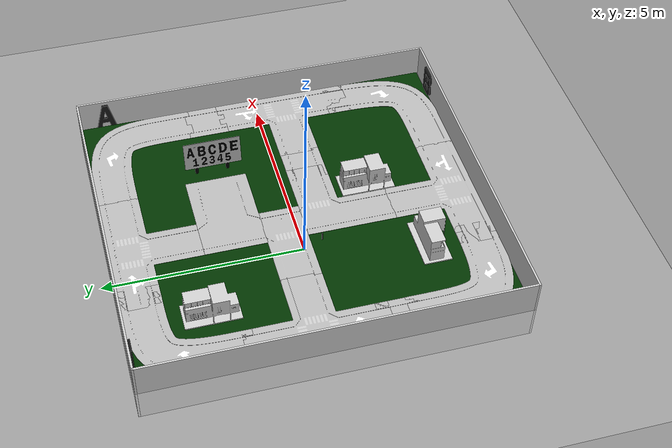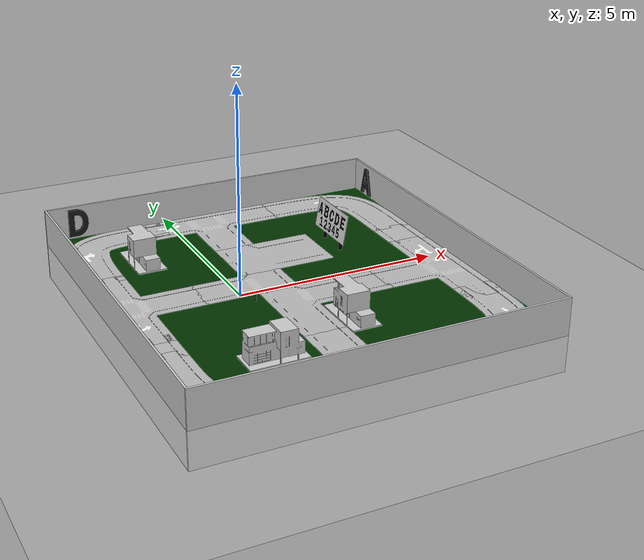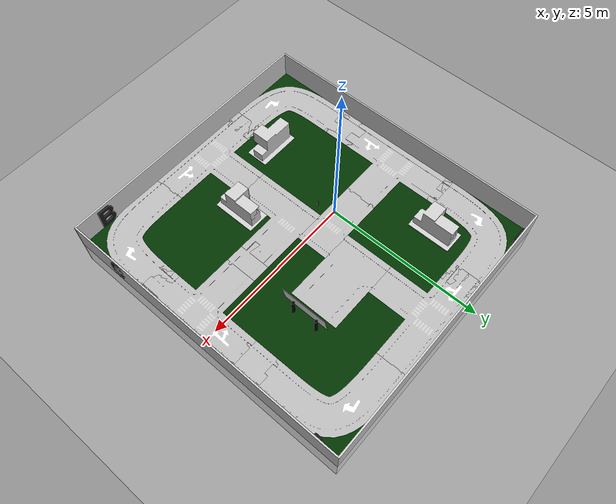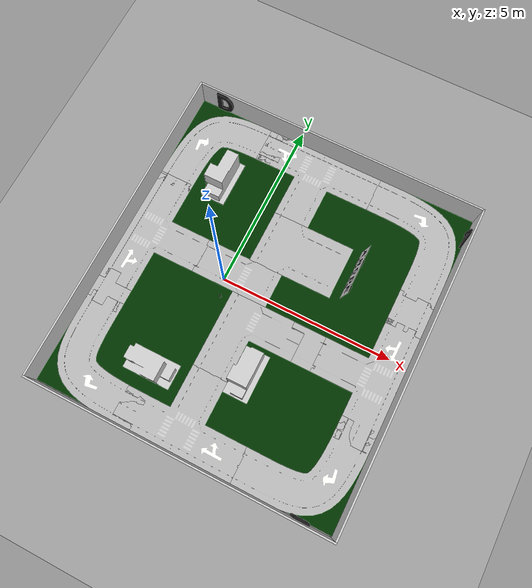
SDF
<sdf version="1.9">
 <world name="circuito">
  <physics name="1ms" type="ignored">
   <max_step_size>0.001</max_step_size>
   <real_time_factor>1</real_time_factor>
   <real_time_update_rate>1000</real_time_update_rate>
  </physics>
  <plugin name="ignition::gazebo::systems::Physics" filename="libignition-gazebo-physics-system.so"/>
  <plugin name="ignition::gazebo::systems::UserCommands" filename="libignition-gazebo-user-commands-system.so"/>
  <plugin name="ignition::gazebo::systems::SceneBroadcaster" filename="libignition-gazebo-scene-broadcaster-system.so"/>
  <plugin name="ignition::gazebo::systems::Contact" filename="libignition-gazebo-contact-system.so"/>
  <plugin name="ignition::gazebo::systems::Imu" filename="libignition-gazebo-imu-system.so"/>
  <plugin name="ignition::gazebo::systems::Sensors" filename="libignition-gazebo-sensors-system.so">
   <render_engine>ogre</render_engine>
  </plugin>
  <gravity>0 0 -9.8</gravity>
  <magnetic_field>6e-06 2.3e-05 -4.2e-05</magnetic_field>
  <atmosphere type="adiabatic"/>
  <scene><ambient>0.4 0.4 0.4 1</ambient><background>0.7 0.7 0.7 1</background><shadows>true</shadows></scene>
  <model name="ground_plane">
   <static>true</static>
   <link name="link">
    <collision name="collision">
     <pose>0 0 0.059 0 -0 0</pose>
     <geometry><plane><normal>0 0 1</normal><size>100 100</size></plane></geometry>
     <surface>
      <friction><ode><mu>10</mu><mu2>10</mu2><fdir1>1 0 0</fdir1></ode></friction>
      <contact><ode><kp>10000000</kp><kd>1</kd><min_depth>0.01</min_depth></ode></contact>
     </surface>
    </collision>
    <visual name="visual">
     <geometry><plane><normal>0 0 1</normal><size>100 100</size></plane></geometry>
     <material>
      <ambient>0.8 0.8 0.8 1</ambient>
      <diffuse>0.8 0.8 0.8 1</diffuse>
      <specular>0.8 0.8 0.8 1</specular>
     </material>
    </visual>
    <inertial>
     <mass>1</mass>
     <inertia><ixx>1</ixx><ixy>0</ixy><ixz>0</ixz><iyy>1</iyy><iyz>0</iyz><izz>1</izz></inertia>
    </inertial>
   </link>
  </model>
  <model name="t_junction_road_1">
   <static>true</static>
   <pose>5 -1.8698 0.05 0 -0 0</pose>
   <include><uri>model://Circuito/TJunction Road</uri></include>
  </model>
  <model name="t_junction_road_2">
   <static>true</static>
   <pose>2.0399 4.1616 0.05 0 -0 1.57</pose>
   <include><uri>model://Circuito/TJunction Road</uri></include>
  </model>
  <model name="t_junction_road_3">
   <static>true</static>
   <pose>-0.2362 -4.2467 0.05 0 0 -1.57</pose>
   <include><uri>model://Circuito/TJunction Road</uri></include>
  </model>
  <model name="t_junction_road_4">
   <static>true</static>
   <pose>-2.6081 1.4488 0.05 0 -0 -3.14159</pose>
   <include><uri>model://Circuito/TJunction Road</uri></include>
  </model>
  <model name="t_junction_left_arm_road">
   <static>true</static>
   <pose>0.9 0.412 0.05 0 -0 -3.14159</pose>
   <include><uri>model://Circuito/TJunctionLeftArm Road</uri></include>
  </model>
  <model name="t_junction_no_arms_road">
   <static>true</static>
   <pose>0.8756 -0.8314 0.05 0 -0 0</pose>
   <include><uri>model://Circuito/TJunctionNoArms Road</uri></include>
  </model>
  <model name="Right_turn_road_1">
   <static>true</static>
   <pose>4.7739 3.8228 0.05 0 -0 0</pose>
   <include><uri>model://Circuito/RightTurn Road</uri></include>
  </model>
  <model name="Right_turn_road_2">
   <static>true</static>
   <pose>4.6605 -4.0192 0.05 0 0 -1.57</pose>
   <include><uri>model://Circuito/RightTurn Road</uri></include>
  </model>
  <model name="Right_turn_road_3">
   <static>true</static>
   <pose>-2.3853 -3.9068 0.05 0 -0 -3.14159</pose>
   <include><uri>model://Circuito/RightTurn Road</uri></include>
  </model>
  <model name="Right_turn_road_4">
   <static>true</static>
   <pose>-2.2684 3.9392 0.05 0 -0 1.57</pose>
   <include><uri>model://Circuito/RightTurn Road</uri></include>
  </model>
  <model name="Straight_square_road_1">
   <static>true</static>
   <pose>2.7995 -0.73 0.05 0 -0 1.57</pose>
   <include><uri>model://Circuito/StraightSquare Road</uri></include>
  </model>
  <model name="Straight_square_road_2">
   <static>true</static>
   <pose>4.9985 1.4021 0.05 0 -0 0</pose>
   <include><uri>model://Circuito/StraightSquare Road</uri></include>
  </model>
  <model name="Straight_square_road_3">
   <static>true</static>
   <pose>-2.6107 -1.6586 0.05 0 -0 0</pose>
   <include><uri>model://Circuito/StraightSquare Road</uri></include>
  </model>
  <model name="TJunction_deadEnd_road_1">
   <static>true</static>
   <pose>0.8979 2.7444 0.05 0 -0 -3.14159</pose>
   <include><uri>model://Circuito/TJunctionDeadEnd Road</uri></include>
  </model>
  <model name="grass_ground">
   <static>true</static>
   <pose>1.1887 0 0 0 -0 0</pose>
   <link name="box">
    <visual name="visual">
     <geometry><box><size>8.7 9.4 0.1</size></box></geometry>
     <material>
      <ambient>0 0.3 0 1</ambient>
      <diffuse>0 0.2 0 1</diffuse>
      <specular>0.5 0.5 0.5 1</specular>
     </material>
    </visual>
    <collision name="collision">
     <geometry><box><size>8.7 9.4 0.1</size></box></geometry>
     <surface>
      <friction><ode><mu>10</mu><mu2>10</mu2><fdir1>1 0 0</fdir1></ode></friction>
      <contact><ode><kp>10000000</kp><kd>1</kd><min_depth>0.01</min_depth></ode></contact>
     </surface>
    </collision>
    <inertial>
     <mass>1</mass>
     <inertia><ixx>1</ixx><ixy>0</ixy><ixz>0</ixz><iyy>1</iyy><iyz>0</iyz><izz>1</izz></inertia>
    </inertial>
   </link>
  </model>
  <model name="wall_front">
   <static>true</static>
   <pose>5.5368 -0.0111 0 0 -0 0</pose>
   <link name="box">
    <visual name="visual">
     <geometry><box><size>0.05 9.45 1.8</size></box></geometry>
     <material>
      <ambient>0.8 0.8 0.8 1</ambient>
      <diffuse>0.8 0.8 0.8 1</diffuse>
      <specular>1 1 1 1</specular>
     </material>
    </visual>
    <collision name="collision"><geometry><box><size>0.05 9.45 1.8</size></box></geometry></collision>
    <inertial>
     <mass>1</mass>
     <inertia><ixx>1</ixx><ixy>0</ixy><ixz>0</ixz><iyy>1</iyy><iyz>0</iyz><izz>1</izz></inertia>
    </inertial>
   </link>
  </model>
  <model name="wall_rear">
   <static>true</static>
   <pose>-3.1457 -0.0111 0 0 -0 0</pose>
   <link name="box">
    <visual name="visual">
     <geometry><box><size>0.05 9.45 1.8</size></box></geometry>
     <material>
      <ambient>0.8 0.8 0.8 1</ambient>
      <diffuse>0.8 0.8 0.8 1</diffuse>
      <specular>1 1 1 1</specular>
     </material>
    </visual>
    <collision name="collision"><geometry><box><size>0.05 9.45 1.8</size></box></geometry></collision>
    <inertial>
     <mass>1</mass>
     <inertia><ixx>1</ixx><ixy>0</ixy><ixz>0</ixz><iyy>1</iyy><iyz>0</iyz><izz>1</izz></inertia>
    </inertial>
   </link>
  </model>
  <model name="wall_left">
   <static>true</static>
   <pose>1.1952 4.693 0 0 -0 1.57</pose>
   <link name="box">
    <visual name="visual">
     <geometry><box><size>0.05 8.732 1.8</size></box></geometry>
     <material>
      <ambient>0.8 0.8 0.8 1</ambient>
      <diffuse>0.8 0.8 0.8 1</diffuse>
      <specular>1 1 1 1</specular>
     </material>
    </visual>
    <collision name="collision"><geometry><box><size>0.05 8.732 1.8</size></box></geometry></collision>
    <inertial>
     <mass>1</mass>
     <inertia><ixx>1</ixx><ixy>0</ixy><ixz>0</ixz><iyy>1</iyy><iyz>0</iyz><izz>1</izz></inertia>
    </inertial>
   </link>
  </model>
  <model name="wall_right">
   <static>true</static>
   <pose>1.1952 -4.7525 0 0 -0 1.57</pose>
   <link name="box">
    <visual name="visual">
     <geometry><box><size>0.05 8.7324 1.8</size></box></geometry>
     <material>
      <ambient>0.8 0.8 0.8 1</ambient>
      <diffuse>0.8 0.8 0.8 1</diffuse>
      <specular>1 1 1 1</specular>
     </material>
    </visual>
    <collision name="collision"><geometry><box><size>0.05 8.7324 1.8</size></box></geometry></collision>
    <inertial>
     <mass>1</mass>
     <inertia><ixx>1</ixx><ixy>0</ixy><ixz>0</ixz><iyy>1</iyy><iyz>0</iyz><izz>1</izz></inertia>
    </inertial>
   </link>
  </model>
  <model name="traffic_light_base">
   <static>true</static>
   <pose>0.165149 -0.500509 0 0 -0 0</pose>
   <link name="cylinder">
    <visual name="visual">
     <geometry><cylinder><radius>0.021999999999999999</radius><length>0.5</length></cylinder></geometry>
     <material>
      <ambient>0.2 0.2 0.2 1</ambient>
      <diffuse>0.2 0.2 0.2 1</diffuse>
      <specular>1 1 1 1</specular>
     </material>
    </visual>
    <collision name="collision">
     <geometry><cylinder><radius>0.021999999999999999</radius><length>0.5</length></cylinder></geometry>
    </collision>
    <inertial>
     <mass>1</mass>
     <inertia><ixx>1</ixx><ixy>0</ixy><ixz>0</ixz><iyy>1</iyy><iyz>0</iyz><izz>1</izz></inertia>
    </inertial>
   </link>
  </model>
  <model name="letter_A">
   <static>true</static>
   <pose>5.4829 4.0012 -0.0549 0 0 -1.57</pose>
   <include><uri>model://Circuito/Letter A</uri></include>
  </model>
  <model name="letter_B">
   <static>true</static>
   <pose>4.5782 -4.7016 -0.0549 0 -0 -3.14159</pose>
   <include><uri>model://Circuito/Letter B</uri></include>
  </model>
  <model name="letter_C">
   <static>true</static>
   <pose>5.5234 -3.1115 -0.0549 0 -0 1.57</pose>
   <include><uri>model://Circuito/Letter C</uri></include>
  </model>
  <model name="letter_D">
   <static>true</static>
   <pose>-2.3669 4.6608 -0.0549 0 -0 0</pose>
   <include><uri>model://Circuito/Letter D</uri></include>
  </model>
  <model name="letter_panel">
   <static>true</static>
   <pose>3.1174 1.587 0.3039 0 0 -1.57</pose>
   <include><uri>model://Circuito/Letter Panel</uri></include>
  </model>
  <model name="house_1">
   <static>true</static>
   <pose>-0.984273 -2.92449 0.0503 0 -0 0</pose>
   <include><uri>model://Circuito/House</uri></include>
  </model>
  <model name="house_2">
   <static>true</static>
   <pose>1.8754 -1.6625 0.0503 0 0 -1.57</pose>
   <include><uri>model://Circuito/House</uri></include>
  </model>
  <model name="house_3">
   <static>true</static>
   <pose>-1.2956 3.03358 0.0503 0 0 -1.57</pose>
   <include><uri>model://Circuito/House</uri></include>
  </model>
  <light name="sun" type="directional">
   <pose>0 0 10 0 -0 0</pose>
   <intensity>1</intensity>
   <direction>-0.5 0.1 -0.9</direction>
   <diffuse>0.8 0.8 0.8 1</diffuse>
   <specular>0.2 0.2 0.2 1</specular>
   <attenuation>
    <range>1000</range>
    <linear>0.01</linear>
    <constant>0.90000000000000002</constant>
    <quadratic>0.001</quadratic>
   </attenuation>
   <spot><inner_angle>0</inner_angle><outer_angle>0</outer_angle><falloff>0</falloff></spot>
  </light>
 </world>
</sdf>

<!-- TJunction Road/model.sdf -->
<sdf version="1.9">
  <model name="TJunction Road">
    <static>true</static>
    <link name="link">
      <collision name="collision">
        <geometry>
          <mesh>
            <scale>0.05 0.05 0.05</scale>
            <uri>model://Circuito/TJunction Road/meshes/TJunction.dae</uri>
          </mesh>
        </geometry>
      </collision>
      <visual name="road">
        <geometry>
          <mesh>
            <scale>0.05 0.05 0.05</scale>
            <uri>model://Circuito/TJunction Road/meshes/TJunction.dae</uri>
          </mesh>
        </geometry>
      </visual>
    </link>
  </model>
</sdf>

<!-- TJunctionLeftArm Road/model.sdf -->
<sdf version="1.9">
  <model name="TJunctionLeftArm Road">
    <static>true</static>
    <link name="link">
      <collision name="collision">
        <geometry>
          <mesh>
            <scale>0.05 0.05 0.05</scale>
            <uri>model://Circuito/TJunctionLeftArm Road/meshes/TJunctionLeftArm.dae</uri>
          </mesh>
        </geometry>
      </collision>
      <visual name="road">
        <geometry>
          <mesh>
            <scale>0.05 0.05 0.05</scale>
            <uri>model://Circuito/TJunctionLeftArm Road/meshes/TJunctionLeftArm.dae</uri>
          </mesh>
        </geometry>
      </visual>
    </link>
  </model>
</sdf>

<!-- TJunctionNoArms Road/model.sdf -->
<sdf version="1.9">
  <model name="TJunctionNoArms Road">
    <static>true</static>
    <link name="link">
      <collision name="collision">
        <geometry>
          <mesh>
            <scale>0.05 0.05 0.05</scale>
            <uri>model://Circuito/TJunctionNoArms Road/meshes/TJunctionNoArms.dae</uri>
          </mesh>
        </geometry>
      </collision>
      <visual name="road">
        <geometry>
          <mesh>
            <scale>0.05 0.05 0.05</scale>
            <uri>model://Circuito/TJunctionNoArms Road/meshes/TJunctionNoArms.dae</uri>
          </mesh>
        </geometry>
      </visual>
    </link>
  </model>
</sdf>

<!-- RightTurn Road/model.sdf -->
<sdf version="1.9">
  <model name="RightTurn Road">
    <static>true</static>
    <link name="link">
      <collision name="collision">
        <geometry>
          <mesh>
            <scale>0.05 0.05 0.05</scale>
            <uri>model://Circuito/RightTurn Road/meshes/RightTurn.dae</uri>
          </mesh>
        </geometry>
      </collision>
      <visual name="road">
        <geometry>
          <mesh>
            <scale>0.05 0.05 0.05</scale>
            <uri>model://Circuito/RightTurn Road/meshes/RightTurn.dae</uri>
          </mesh>
        </geometry>
      </visual>
    </link>
  </model>
</sdf>

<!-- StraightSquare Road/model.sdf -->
<sdf version="1.9">
  <model name="StraightSquare Road">
    <static>true</static>
    <link name="link">
      <collision name="collision">
        <geometry>
          <mesh>
            <scale>0.05 0.05 0.05</scale>
            <uri>model://Circuito/StraightSquare Road/meshes/StraightSquare.dae</uri>
          </mesh>
        </geometry>
      </collision>
      <visual name="road">
        <geometry>
          <mesh>
            <scale>0.05 0.05 0.05</scale>
            <uri>model://Circuito/StraightSquare Road/meshes/StraightSquare.dae</uri>
          </mesh>
        </geometry>
      </visual>
    </link>
  </model>
</sdf>

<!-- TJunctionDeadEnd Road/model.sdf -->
<sdf version="1.9">
  <model name="TJunctionDeadEnd Road">
    <static>true</static>
    <link name="link">
      <collision name='collision'>
        <geometry>
          <mesh>
            <scale>0.05 0.05 0.05</scale>
            <uri>model://Circuito/TJunctionDeadEnd Road/meshes/TJunctionDeadEnd.dae</uri>
          </mesh>
        </geometry>
      </collision>
      <visual name="road">
        <geometry>
          <mesh>
            <scale>0.05 0.05 0.05</scale>
            <uri>model://Circuito/TJunctionDeadEnd Road/meshes/TJunctionDeadEnd.dae</uri>
          </mesh>
        </geometry>
      </visual>
    </link>
  </model>
</sdf>

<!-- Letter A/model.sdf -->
<sdf version="1.9">
  <model name="Letter A">
    <static>true</static>
    <link name="link">
      <collision name="collision">
        <geometry>
          <mesh>
            <scale>1 1 1</scale>
            <uri>model://Circuito/Letter A/meshes/letter_A.stl</uri>
          </mesh>
        </geometry>
      </collision>
      <visual name="letter">
        <geometry>
          <mesh>
            <scale>1 1 1</scale>
            <uri>model://Circuito/Letter A/meshes/letter_A.stl</uri>
          </mesh>
        </geometry>
        <material>
          <ambient>0.1 0.1 0.1 1</ambient>
          <diffuse>0.1 0.1 0.1 1</diffuse>
          <specular>1.0 1.0 1.0 1</specular>
        </material>
      </visual>
    </link>
  </model>
</sdf>

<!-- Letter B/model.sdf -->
<sdf version="1.9">
  <model name="Letter B">
    <static>true</static>
    <link name="link">
      <collision name="collision">
        <geometry>
          <mesh>
            <scale>1 1 1</scale>
            <uri>model://Circuito/Letter B/meshes/letter_B.stl</uri>
          </mesh>
        </geometry>
      </collision>
      <visual name="letter">
        <geometry>
          <mesh>
            <scale>1 1 1</scale>
            <uri>model://Circuito/Letter B/meshes/letter_B.stl</uri>
          </mesh>
        </geometry>
        <material>
          <ambient>0.1 0.1 0.1 1</ambient>
          <diffuse>0.1 0.1 0.1 1</diffuse>
          <specular>1.0 1.0 1.0 1</specular>
        </material>
      </visual>
    </link>
  </model>
</sdf>

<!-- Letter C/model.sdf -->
<sdf version="1.9">
  <model name="Letter C">
    <static>true</static>
    <link name="link">
      <collision name="collision">
        <geometry>
          <mesh>
            <scale>1 1 1</scale>
            <uri>model://Circuito/Letter C/meshes/letter_C.stl</uri>
          </mesh>
        </geometry>
      </collision>
      <visual name="letter">
        <geometry>
          <mesh>
            <scale>1 1 1</scale>
            <uri>model://Circuito/Letter C/meshes/letter_C.stl</uri>
          </mesh>
        </geometry>
        <material>
          <ambient>0.1 0.1 0.1 1</ambient>
          <diffuse>0.1 0.1 0.1 1</diffuse>
          <specular>1.0 1.0 1.0 1</specular>
        </material>
      </visual>
    </link>
  </model>
</sdf>

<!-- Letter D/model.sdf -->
<sdf version="1.9">
  <model name="Letter D">
    <static>true</static>
    <link name="link">
      <collision name="collision">
        <geometry>
          <mesh>
            <scale>1 1 1</scale>
            <uri>model://Circuito/Letter D/meshes/letter_D.stl</uri>
          </mesh>
        </geometry>
      </collision>
      <visual name="letter">
        <geometry>
          <mesh>
            <scale>1 1 1</scale>
            <uri>model://Circuito/Letter D/meshes/letter_D.stl</uri>
          </mesh>
        </geometry>
        <material>
          <ambient>0.1 0.1 0.1 1</ambient>
          <diffuse>0.1 0.1 0.1 1</diffuse>
          <specular>1.0 1.0 1.0 1</specular>
        </material>
      </visual>
    </link>
  </model>
</sdf>

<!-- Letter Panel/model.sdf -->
<sdf version="1.9">
  <model name="Letter panel">
    <static>true</static>
    <link name="link">
      <collision name="collision">
        <geometry>
          <mesh>
            <scale>1 1 1</scale>
            <uri>model://Circuito/Letter Panel/meshes/letter_panel.dae</uri>
          </mesh>
        </geometry>
      </collision>
      <visual name="panel">
        <geometry>
          <mesh>
            <scale>1 1 1</scale>
            <uri>model://Circuito/Letter Panel/meshes/letter_panel.dae</uri>
          </mesh>
        </geometry>
      </visual>
    </link>
  </model>
</sdf>

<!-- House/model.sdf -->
<sdf version="1.9">
  <model name="House">
    <static>true</static>
    <link name="link">
      <collision name="collision">
        <geometry>
          <mesh>
            <scale>0.08 0.08 0.08</scale>
            <uri>model://Circuito/House/meshes/House_Model_.dae</uri>
          </mesh>
        </geometry>
      </collision>
      <visual name="house">
        <geometry>
          <mesh>
            <scale>0.08 0.08 0.08</scale>
            <uri>model://Circuito/House/meshes/House_Model_.dae</uri>
          </mesh>
        </geometry>
      </visual>
    </link>
  </model>
</sdf>
